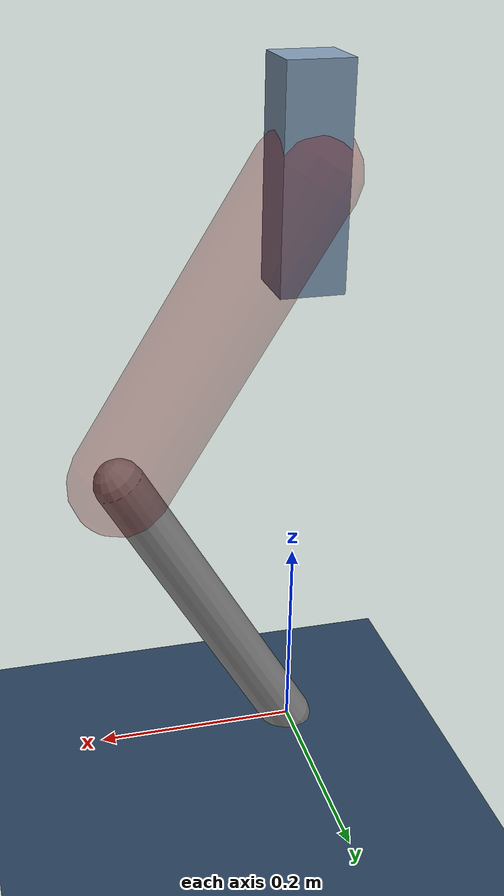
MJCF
<mujoco model="Hopper2D">
	<compiler inertiafromgeom="true" angle="radian" />
	<option timestep="0.001" integrator="implicit" cone="elliptic" solver="Newton" tolerance="1e-10" />

	<default>
		<geom contype="1" conaffinity="1" condim="3" friction="2 0.005 0.0001" solref="0.005 1" />
		<joint limited="true" damping="0.1" />
	</default>

	<asset>
		<texture name="skybox" type="skybox" builtin="gradient" rgb1=".4 .6 .8" rgb2="0 0 0" width="800" height="800" />
		<texture name="grid" type="2d" builtin="checker" rgb1=".1 .2 .3" rgb2=".2 .3 .4" width="300" height="300" mark="edge" markrgb=".2 .3 .4" />
		<material name="ground" texture="grid" texrepeat="1 1" texuniform="true" reflectance="0.1" />
		<material name="leg" rgba="0.5 0.6 0.7 1" />
	</asset>

	<worldbody>

		<geom name="floor" type="plane" size="5 5 0.25" material="ground" />

		<light directional="false" diffuse="0.8 0.8 0.8" specular="0.3 0.3 0.3" pos="0 0 2" dir="0 0 -1" />
		<light mode="targetbodycom" target="base" directional="false" diffuse="0.8 0.8 0.8" specular="0.3 0.3 0.3" pos="0 0 2" dir="0 0 -1" />

		<camera name="fixed" pos="0 -2 1" xyaxes="1 0 0 0 0 1" />
		<camera name="tracking" mode="trackcom" pos="0 -3 1" />

		<body name="root" pos="0 0 0.5763298717511368">
			<joint name="slide_x" type="slide" axis="1 0 0" range="-100 100" />
			<joint name="slide_z" type="slide" axis="0 0 1" range="0 10" />

			<body name="base" pos="0 0 0">
				<geom name="torso" type="box" size="0.03 0.03 0.1" mass="2.816" material="leg" />

				<body name="link1" pos="0 0 0" euler="0 1.017829636223325 0">
					<joint type="hinge" axis="0 -1 0" pos="0 0 0" name="hinge1" limited="true" range="-3.14 3.14" stiffness="0" damping="0.1" />
					<geom name="thigh" type="capsule" fromto="0 0 0 0.3285123489222192 0 0" size="0.05" rgba="0.5 0 0 0.3" mass="1.0667345769822136" />

					<body name="link2" pos="0.3285123489222192 0 0" euler="0 1.0795821741502973 0">
						<joint type="hinge" axis="0 -1 0" pos="0 0 0" name="hinge2" limited="true" range="-3.14 3.14" stiffness="0" damping="0.1" />
						<geom name="shank" type="capsule" fromto="0 0 0 0.3432864977672453 0 0" size="0.025" mass="0.5185291982137962" />

					</body>
				</body>
			</body>
		</body>
	</worldbody>

	<actuator>
		<motor name="torque1" joint="hinge1" ctrlrange="-44.034448047343666 44.034448047343666" ctrllimited="true" gear="1" />
		<motor name="torque2" joint="hinge2" ctrlrange="-139.03156740243585 139.03156740243585" ctrllimited="true" gear="1" />
	</actuator>
</mujoco>
